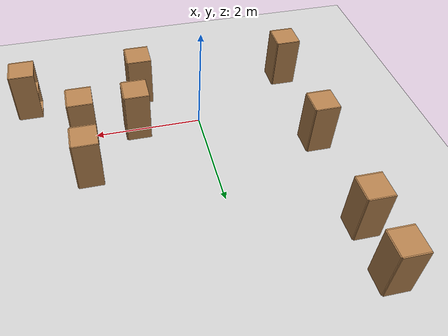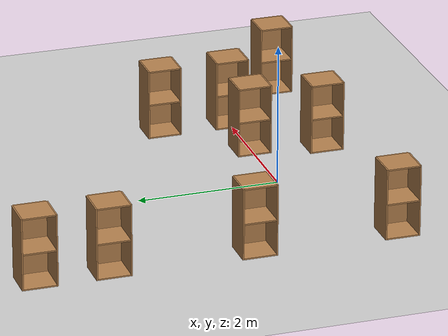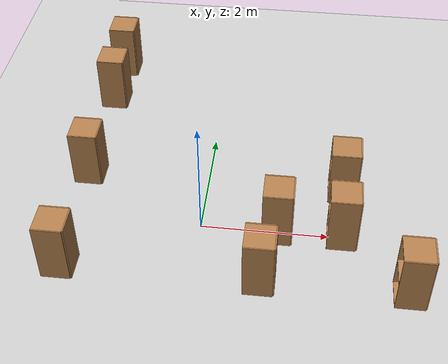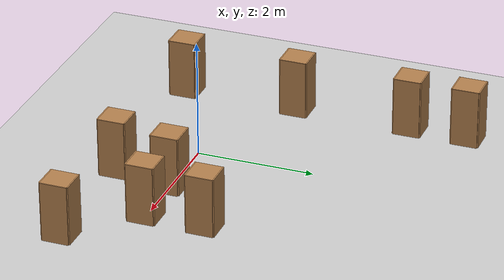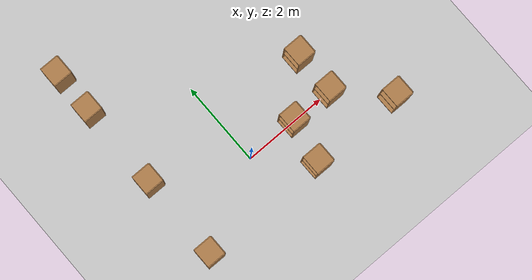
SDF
<sdf version="1.4">
 <world name="testarea">
  <include><uri>model://sun</uri></include>
  <include><uri>model://ground_plane</uri></include>
  <include><uri>model://cabinet</uri><name>cabinet1</name><pose>-2 -1 0 0 0 0</pose></include>
  <include><uri>model://cabinet</uri><name>cabinet2</name><pose>1.2 0 0 0 0 0</pose></include>
  <include><uri>model://cabinet</uri><name>cabinet3</name><pose>2.2 0 0 0 0 0</pose></include>
  <include><uri>model://cabinet</uri><name>cabinet4</name><pose>2.2 1 0 0 0 0</pose></include>
  <include><uri>model://cabinet</uri><name>cabinet5</name><pose>3.2 -1 0 0 0 0</pose></include>
  <include><uri>model://cabinet</uri><name>cabinet6</name><pose>1 -1 0 0 0 0</pose></include>
  <include><uri>model://cabinet</uri><name>cabinet7</name><pose>-2 1 0 0 0 0</pose></include>
  <include><uri>model://cabinet</uri><name>cabinet8</name><pose>-2 3 0 0 0 0</pose></include>
  <include><uri>model://cabinet</uri><name>cabinet9</name><pose>-2 4 0 0 0 0</pose></include>
 </world>
</sdf>

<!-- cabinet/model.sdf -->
<sdf version="1.5">
  <model name="cabinet">
    <static>true</static>
    <link name="cabinet_bottom_plate">
      <inertial>
        <pose>0 0 -1 0 0 0</pose>
        <inertia>
          <ixx>2.050000</ixx>
          <ixy>0</ixy>
          <ixz>0</ixz>
          <iyy>2.050000</iyy>
          <iyz>0</iyz>
          <izz>2.050000</izz>
        </inertia>
        <mass>25.000000</mass>
      </inertial>
      <collision name="cabinet_bottom_plate_geom">
        <pose>0 0 0.010000 0 0 0</pose>
        <geometry>
          <box>
            <size>0.450000 0.450000 0.020000</size>
          </box>
        </geometry>
      </collision>
      <visual name="cabinet_bottom_plate_geom_visual">
        <pose>0 0 0.010000 0 0 0</pose>
        <geometry>
          <box>
            <size>0.450000 0.450000 0.020000</size>
          </box>
        </geometry>
        <material>
          <script>
            <uri>model://media/materials/scripts/gazebo.material</uri>
            <name>Gazebo/Wood</name>
          </script>
        </material>
      </visual>
      <collision name="cabinet_bottom_plate_geom_cabinet_back_plate">
        <pose>0.235000 0 0.510000 0 0 0</pose>
        <geometry>
          <box>
            <size>0.020000 0.450000 1.020000</size>
          </box>
        </geometry>
      </collision>
      <visual name="cabinet_bottom_plate_geom_cabinet_back_plate_visual">
        <pose>0.235000 0 0.510000 0 0 0</pose>
        <geometry>
          <box>
            <size>0.020000 0.450000 1.020000</size>
          </box>
        </geometry>
        <material>
          <script>
            <uri>model://media/materials/scripts/gazebo.material</uri>
            <name>Gazebo/Wood</name>
          </script>
        </material>
      </visual>
      <collision name="cabinet_bottom_plate_geom_cabinet_left_plate">
        <pose>0 0.235000 0.510000 0 0 0</pose>
        <geometry>
          <box>
            <size>0.450000 0.020000 1.020000</size>
          </box>
        </geometry>
      </collision>
      <visual name="cabinet_bottom_plate_geom_cabinet_left_plate_visual">
        <pose>0 0.235000 0.510000 0 0 0</pose>
        <geometry>
          <box>
            <size>0.450000 0.020000 1.020000</size>
          </box>
        </geometry>
        <material>
          <script>
            <uri>model://media/materials/scripts/gazebo.material</uri>
            <name>Gazebo/Wood</name>
          </script>
        </material>
      </visual>
      <collision name="cabinet_bottom_plate_geom_cabinet_middle_plate">
        <pose>0 0 0.510000 0 0 0</pose>
        <geometry>
          <box>
            <size>0.450000 0.450000 0.020000</size>
          </box>
        </geometry>
      </collision>
      <visual name="cabinet_bottom_plate_geom_cabinet_middle_plate_visual">
        <pose>0 0 0.510000 0 0 0</pose>
        <geometry>
          <box>
            <size>0.450000 0.450000 0.020000</size>
          </box>
        </geometry>
        <material>
          <script>
            <uri>model://media/materials/scripts/gazebo.material</uri>
            <name>Gazebo/Wood</name>
          </script>
        </material>
      </visual>
      <collision name="cabinet_bottom_plate_geom_cabinet_right_plate">
        <pose>0 -0.235000 0.510000 0 0 0</pose>
        <geometry>
          <box>
            <size>0.450000 0.020000 1.020000</size>
          </box>
        </geometry>
      </collision>
      <visual name="cabinet_bottom_plate_geom_cabinet_right_plate_visual">
        <pose>0 -0.235000 0.510000 0 0 0</pose>
        <geometry>
          <box>
            <size>0.450000 0.020000 1.020000</size>
          </box>
        </geometry>
        <material>
          <script>
            <uri>model://media/materials/scripts/gazebo.material</uri>
            <name>Gazebo/Wood</name>
          </script>
        </material>
      </visual>
      <collision name="cabinet_bottom_plate_geom_cabinet_top_plate">
        <pose>0 0 1.010000 0 0 0</pose>
        <geometry>
          <box>
            <size>0.450000 0.450000 0.020000</size>
          </box>
        </geometry>
      </collision>
      <visual name="cabinet_bottom_plate_geom_cabinet_top_plate_visual">
        <pose>0 0 1.010000 0 0 0</pose>
        <geometry>
          <box>
            <size>0.450000 0.450000 0.020000</size>
          </box>
        </geometry>
        <material>
          <script>
            <uri>model://media/materials/scripts/gazebo.material</uri>
            <name>Gazebo/Wood</name>
          </script>
        </material>
      </visual>
    </link>
  </model>
</sdf>
